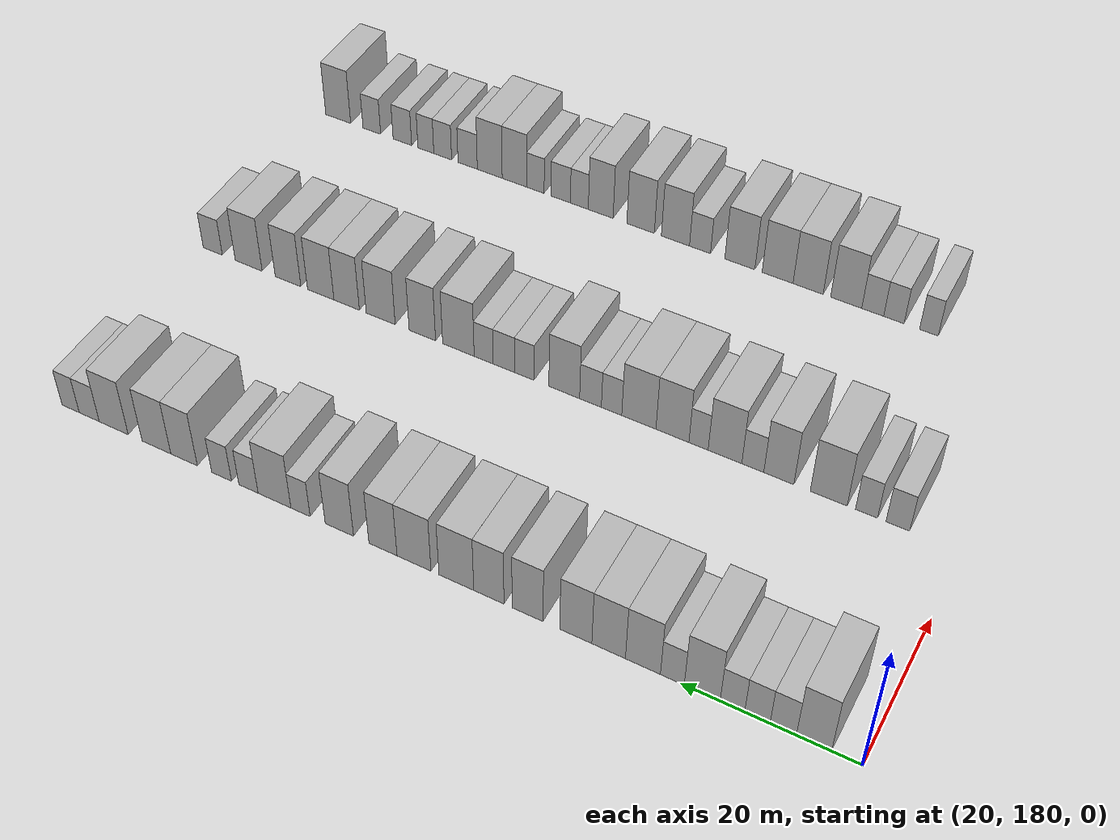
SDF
<sdf version="1.6">
 <world name="default">
  <model name="building_124">
   <static>1</static>
   <pose>25.0000 185.2528 0 0.000000 0.000000 0.000000</pose>
   <link name="link">
    <pose>0 0 4.50 0 0 0</pose>
    <collision name="collision"><geometry><box><size>10.0000 3.8066 9.0000</size></box></geometry></collision>
    <visual name="visual">
     <cast_shadows>0</cast_shadows>
     <geometry><box><size>10.0000 3.8066 9.0000</size></box></geometry>
     <material>
      <script>
       <uri>model://HANNAS_wall/materials/scripts</uri>
       <uri>model://HANNAS_wall/materials/textures</uri>
       <name>vrc/HANNAS_wall</name>
      </script>
     </material>
    </visual>
   </link>
  </model>
  <model name="building_125">
   <static>1</static>
   <pose>25.0000 188.5944 0 0.000000 0.000000 0.000000</pose>
   <link name="link">
    <pose>0 0 3.00 0 0 0</pose>
    <collision name="collision"><geometry><box><size>10.0000 2.8766 6.0000</size></box></geometry></collision>
    <visual name="visual">
     <cast_shadows>0</cast_shadows>
     <geometry><box><size>10.0000 2.8766 6.0000</size></box></geometry>
     <material>
      <script>
       <uri>model://HANNAS_wall/materials/scripts</uri>
       <uri>model://HANNAS_wall/materials/textures</uri>
       <name>vrc/HANNAS_wall</name>
      </script>
     </material>
    </visual>
   </link>
  </model>
  <model name="building_126">
   <static>1</static>
   <pose>25.0000 191.4340 0 0.000000 0.000000 0.000000</pose>
   <link name="link">
    <pose>0 0 3.00 0 0 0</pose>
    <collision name="collision"><geometry><box><size>10.0000 2.8026 6.0000</size></box></geometry></collision>
    <visual name="visual">
     <cast_shadows>0</cast_shadows>
     <geometry><box><size>10.0000 2.8026 6.0000</size></box></geometry>
     <material>
      <script>
       <uri>model://HANNAS_wall/materials/scripts</uri>
       <uri>model://HANNAS_wall/materials/textures</uri>
       <name>vrc/HANNAS_wall</name>
      </script>
     </material>
    </visual>
   </link>
  </model>
  <model name="building_127">
   <static>1</static>
   <pose>25.0000 194.2050 0 0.000000 0.000000 0.000000</pose>
   <link name="link">
    <pose>0 0 3.00 0 0 0</pose>
    <collision name="collision"><geometry><box><size>10.0000 2.7393 6.0000</size></box></geometry></collision>
    <visual name="visual">
     <cast_shadows>0</cast_shadows>
     <geometry><box><size>10.0000 2.7393 6.0000</size></box></geometry>
     <material>
      <script>
       <uri>model://HANNAS_wall/materials/scripts</uri>
       <uri>model://HANNAS_wall/materials/textures</uri>
       <name>vrc/HANNAS_wall</name>
      </script>
     </material>
    </visual>
   </link>
  </model>
  <model name="building_128">
   <static>1</static>
   <pose>25.0000 197.5988 0 0.000000 0.000000 0.000000</pose>
   <link name="link">
    <pose>0 0 4.50 0 0 0</pose>
    <collision name="collision"><geometry><box><size>10.0000 4.0482 9.0000</size></box></geometry></collision>
    <visual name="visual">
     <cast_shadows>0</cast_shadows>
     <geometry><box><size>10.0000 4.0482 9.0000</size></box></geometry>
     <material>
      <script>
       <uri>model://HANNAS_wall/materials/scripts</uri>
       <uri>model://HANNAS_wall/materials/textures</uri>
       <name>vrc/HANNAS_wall</name>
      </script>
     </material>
    </visual>
   </link>
  </model>
  <model name="building_129">
   <static>1</static>
   <pose>25.0000 200.9847 0 0.000000 0.000000 0.000000</pose>
   <link name="link">
    <pose>0 0 3.00 0 0 0</pose>
    <collision name="collision"><geometry><box><size>10.0000 2.7237 6.0000</size></box></geometry></collision>
    <visual name="visual">
     <cast_shadows>0</cast_shadows>
     <geometry><box><size>10.0000 2.7237 6.0000</size></box></geometry>
     <material>
      <script>
       <uri>model://HANNAS_wall/materials/scripts</uri>
       <uri>model://HANNAS_wall/materials/textures</uri>
       <name>vrc/HANNAS_wall</name>
      </script>
     </material>
    </visual>
   </link>
  </model>
  <model name="building_130">
   <static>1</static>
   <pose>25.0000 204.3703 0 0.000000 0.000000 0.000000</pose>
   <link name="link">
    <pose>0 0 4.50 0 0 0</pose>
    <collision name="collision"><geometry><box><size>10.0000 4.0473 9.0000</size></box></geometry></collision>
    <visual name="visual">
     <cast_shadows>0</cast_shadows>
     <geometry><box><size>10.0000 4.0473 9.0000</size></box></geometry>
     <material>
      <script>
       <uri>model://HANNAS_wall/materials/scripts</uri>
       <uri>model://HANNAS_wall/materials/textures</uri>
       <name>vrc/HANNAS_wall</name>
      </script>
     </material>
    </visual>
   </link>
  </model>
  <model name="building_131">
   <static>1</static>
   <pose>25.0000 208.3646 0 0.000000 0.000000 0.000000</pose>
   <link name="link">
    <pose>0 0 4.50 0 0 0</pose>
    <collision name="collision"><geometry><box><size>10.0000 3.9413 9.0000</size></box></geometry></collision>
    <visual name="visual">
     <cast_shadows>0</cast_shadows>
     <geometry><box><size>10.0000 3.9413 9.0000</size></box></geometry>
     <material>
      <script>
       <uri>model://HANNAS_wall/materials/scripts</uri>
       <uri>model://HANNAS_wall/materials/textures</uri>
       <name>vrc/HANNAS_wall</name>
      </script>
     </material>
    </visual>
   </link>
  </model>
  <model name="building_132">
   <static>1</static>
   <pose>25.0000 212.2471 0 0.000000 0.000000 0.000000</pose>
   <link name="link">
    <pose>0 0 4.50 0 0 0</pose>
    <collision name="collision"><geometry><box><size>10.0000 3.8238 9.0000</size></box></geometry></collision>
    <visual name="visual">
     <cast_shadows>0</cast_shadows>
     <geometry><box><size>10.0000 3.8238 9.0000</size></box></geometry>
     <material>
      <script>
       <uri>model://HANNAS_wall/materials/scripts</uri>
       <uri>model://HANNAS_wall/materials/textures</uri>
       <name>vrc/HANNAS_wall</name>
      </script>
     </material>
    </visual>
   </link>
  </model>
  <model name="building_133">
   <static>1</static>
   <pose>25.0000 218.0286 0 0.000000 0.000000 0.000000</pose>
   <link name="link">
    <pose>0 0 4.50 0 0 0</pose>
    <collision name="collision"><geometry><box><size>10.0000 3.7392 9.0000</size></box></geometry></collision>
    <visual name="visual">
     <cast_shadows>0</cast_shadows>
     <geometry><box><size>10.0000 3.7392 9.0000</size></box></geometry>
     <material>
      <script>
       <uri>model://HANNAS_wall/materials/scripts</uri>
       <uri>model://HANNAS_wall/materials/textures</uri>
       <name>vrc/HANNAS_wall</name>
      </script>
     </material>
    </visual>
   </link>
  </model>
  <model name="building_134">
   <static>1</static>
   <pose>25.0000 222.7619 0 0.000000 0.000000 0.000000</pose>
   <link name="link">
    <pose>0 0 4.50 0 0 0</pose>
    <collision name="collision"><geometry><box><size>10.0000 3.7274 9.0000</size></box></geometry></collision>
    <visual name="visual">
     <cast_shadows>0</cast_shadows>
     <geometry><box><size>10.0000 3.7274 9.0000</size></box></geometry>
     <material>
      <script>
       <uri>model://HANNAS_wall/materials/scripts</uri>
       <uri>model://HANNAS_wall/materials/textures</uri>
       <name>vrc/HANNAS_wall</name>
      </script>
     </material>
    </visual>
   </link>
  </model>
  <model name="building_135">
   <static>1</static>
   <pose>25.0000 226.8008 0 0.000000 0.000000 0.000000</pose>
   <link name="link">
    <pose>0 0 4.50 0 0 0</pose>
    <collision name="collision"><geometry><box><size>10.0000 4.3503 9.0000</size></box></geometry></collision>
    <visual name="visual">
     <cast_shadows>0</cast_shadows>
     <geometry><box><size>10.0000 4.3503 9.0000</size></box></geometry>
     <material>
      <script>
       <uri>model://HANNAS_wall/materials/scripts</uri>
       <uri>model://HANNAS_wall/materials/textures</uri>
       <name>vrc/HANNAS_wall</name>
      </script>
     </material>
    </visual>
   </link>
  </model>
  <model name="building_136">
   <static>1</static>
   <pose>25.0000 232.1371 0 0.000000 0.000000 0.000000</pose>
   <link name="link">
    <pose>0 0 4.50 0 0 0</pose>
    <collision name="collision"><geometry><box><size>10.0000 4.3225 9.0000</size></box></geometry></collision>
    <visual name="visual">
     <cast_shadows>0</cast_shadows>
     <geometry><box><size>10.0000 4.3225 9.0000</size></box></geometry>
     <material>
      <script>
       <uri>model://HANNAS_wall/materials/scripts</uri>
       <uri>model://HANNAS_wall/materials/textures</uri>
       <name>vrc/HANNAS_wall</name>
      </script>
     </material>
    </visual>
   </link>
  </model>
  <model name="building_137">
   <static>1</static>
   <pose>25.0000 236.1099 0 0.000000 0.000000 0.000000</pose>
   <link name="link">
    <pose>0 0 4.50 0 0 0</pose>
    <collision name="collision"><geometry><box><size>10.0000 3.6230 9.0000</size></box></geometry></collision>
    <visual name="visual">
     <cast_shadows>0</cast_shadows>
     <geometry><box><size>10.0000 3.6230 9.0000</size></box></geometry>
     <material>
      <script>
       <uri>model://HANNAS_wall/materials/scripts</uri>
       <uri>model://HANNAS_wall/materials/textures</uri>
       <name>vrc/HANNAS_wall</name>
      </script>
     </material>
    </visual>
   </link>
  </model>
  <model name="building_138">
   <static>1</static>
   <pose>25.0000 241.7813 0 0.000000 0.000000 0.000000</pose>
   <link name="link">
    <pose>0 0 4.50 0 0 0</pose>
    <collision name="collision"><geometry><box><size>10.0000 3.7198 9.0000</size></box></geometry></collision>
    <visual name="visual">
     <cast_shadows>0</cast_shadows>
     <geometry><box><size>10.0000 3.7198 9.0000</size></box></geometry>
     <material>
      <script>
       <uri>model://HANNAS_wall/materials/scripts</uri>
       <uri>model://HANNAS_wall/materials/textures</uri>
       <name>vrc/HANNAS_wall</name>
      </script>
     </material>
    </visual>
   </link>
  </model>
  <model name="building_139">
   <static>1</static>
   <pose>25.0000 246.9267 0 0.000000 0.000000 0.000000</pose>
   <link name="link">
    <pose>0 0 3.00 0 0 0</pose>
    <collision name="collision"><geometry><box><size>10.0000 2.5712 6.0000</size></box></geometry></collision>
    <visual name="visual">
     <cast_shadows>0</cast_shadows>
     <geometry><box><size>10.0000 2.5712 6.0000</size></box></geometry>
     <material>
      <script>
       <uri>model://HANNAS_wall/materials/scripts</uri>
       <uri>model://HANNAS_wall/materials/textures</uri>
       <name>vrc/HANNAS_wall</name>
      </script>
     </material>
    </visual>
   </link>
  </model>
  <model name="building_140">
   <static>1</static>
   <pose>25.0000 250.4297 0 0.000000 0.000000 0.000000</pose>
   <link name="link">
    <pose>0 0 4.50 0 0 0</pose>
    <collision name="collision"><geometry><box><size>10.0000 4.4347 9.0000</size></box></geometry></collision>
    <visual name="visual">
     <cast_shadows>0</cast_shadows>
     <geometry><box><size>10.0000 4.4347 9.0000</size></box></geometry>
     <material>
      <script>
       <uri>model://HANNAS_wall/materials/scripts</uri>
       <uri>model://HANNAS_wall/materials/textures</uri>
       <name>vrc/HANNAS_wall</name>
      </script>
     </material>
    </visual>
   </link>
  </model>
  <model name="building_141">
   <static>1</static>
   <pose>25.0000 253.9597 0 0.000000 0.000000 0.000000</pose>
   <link name="link">
    <pose>0 0 3.00 0 0 0</pose>
    <collision name="collision"><geometry><box><size>10.0000 2.6255 6.0000</size></box></geometry></collision>
    <visual name="visual">
     <cast_shadows>0</cast_shadows>
     <geometry><box><size>10.0000 2.6255 6.0000</size></box></geometry>
     <material>
      <script>
       <uri>model://HANNAS_wall/materials/scripts</uri>
       <uri>model://HANNAS_wall/materials/textures</uri>
       <name>vrc/HANNAS_wall</name>
      </script>
     </material>
    </visual>
   </link>
  </model>
  <model name="building_142">
   <static>1</static>
   <pose>25.0000 257.6470 0 0.000000 0.000000 0.000000</pose>
   <link name="link">
    <pose>0 0 3.00 0 0 0</pose>
    <collision name="collision"><geometry><box><size>10.0000 2.7490 6.0000</size></box></geometry></collision>
    <visual name="visual">
     <cast_shadows>0</cast_shadows>
     <geometry><box><size>10.0000 2.7490 6.0000</size></box></geometry>
     <material>
      <script>
       <uri>model://HANNAS_wall/materials/scripts</uri>
       <uri>model://HANNAS_wall/materials/textures</uri>
       <name>vrc/HANNAS_wall</name>
      </script>
     </material>
    </visual>
   </link>
  </model>
  <model name="building_143">
   <static>1</static>
   <pose>25.0000 262.8873 0 0.000000 0.000000 0.000000</pose>
   <link name="link">
    <pose>0 0 4.50 0 0 0</pose>
    <collision name="collision"><geometry><box><size>10.0000 3.7316 9.0000</size></box></geometry></collision>
    <visual name="visual">
     <cast_shadows>0</cast_shadows>
     <geometry><box><size>10.0000 3.7316 9.0000</size></box></geometry>
     <material>
      <script>
       <uri>model://HANNAS_wall/materials/scripts</uri>
       <uri>model://HANNAS_wall/materials/textures</uri>
       <name>vrc/HANNAS_wall</name>
      </script>
     </material>
    </visual>
   </link>
  </model>
  <model name="building_144">
   <static>1</static>
   <pose>25.0000 266.8000 0 0.000000 0.000000 0.000000</pose>
   <link name="link">
    <pose>0 0 4.50 0 0 0</pose>
    <collision name="collision"><geometry><box><size>10.0000 4.0939 9.0000</size></box></geometry></collision>
    <visual name="visual">
     <cast_shadows>0</cast_shadows>
     <geometry><box><size>10.0000 4.0939 9.0000</size></box></geometry>
     <material>
      <script>
       <uri>model://HANNAS_wall/materials/scripts</uri>
       <uri>model://HANNAS_wall/materials/textures</uri>
       <name>vrc/HANNAS_wall</name>
      </script>
     </material>
    </visual>
   </link>
  </model>
  <model name="building_145">
   <static>1</static>
   <pose>25.0000 272.9454 0 0.000000 0.000000 0.000000</pose>
   <link name="link">
    <pose>0 0 4.50 0 0 0</pose>
    <collision name="collision"><geometry><box><size>10.0000 4.1967 9.0000</size></box></geometry></collision>
    <visual name="visual">
     <cast_shadows>0</cast_shadows>
     <geometry><box><size>10.0000 4.1967 9.0000</size></box></geometry>
     <material>
      <script>
       <uri>model://HANNAS_wall/materials/scripts</uri>
       <uri>model://HANNAS_wall/materials/textures</uri>
       <name>vrc/HANNAS_wall</name>
      </script>
     </material>
    </visual>
   </link>
  </model>
  <model name="building_146">
   <static>1</static>
   <pose>25.0000 276.5091 0 0.000000 0.000000 0.000000</pose>
   <link name="link">
    <pose>0 0 3.00 0 0 0</pose>
    <collision name="collision"><geometry><box><size>10.0000 2.9308 6.0000</size></box></geometry></collision>
    <visual name="visual">
     <cast_shadows>0</cast_shadows>
     <geometry><box><size>10.0000 2.9308 6.0000</size></box></geometry>
     <material>
      <script>
       <uri>model://HANNAS_wall/materials/scripts</uri>
       <uri>model://HANNAS_wall/materials/textures</uri>
       <name>vrc/HANNAS_wall</name>
      </script>
     </material>
    </visual>
   </link>
  </model>
  <model name="building_147">
   <static>1</static>
   <pose>25.0000 279.2456 0 0.000000 0.000000 0.000000</pose>
   <link name="link">
    <pose>0 0 3.00 0 0 0</pose>
    <collision name="collision"><geometry><box><size>10.0000 2.5422 6.0000</size></box></geometry></collision>
    <visual name="visual">
     <cast_shadows>0</cast_shadows>
     <geometry><box><size>10.0000 2.5422 6.0000</size></box></geometry>
     <material>
      <script>
       <uri>model://HANNAS_wall/materials/scripts</uri>
       <uri>model://HANNAS_wall/materials/textures</uri>
       <name>vrc/HANNAS_wall</name>
      </script>
     </material>
    </visual>
   </link>
  </model>
  <model name="building_253">
   <static>1</static>
   <pose>55.0000 187.4787 0 0.000000 0.000000 0.000000</pose>
   <link name="link">
    <pose>0 0 3.00 0 0 0</pose>
    <collision name="collision"><geometry><box><size>10.0000 2.7904 6.0000</size></box></geometry></collision>
    <visual name="visual">
     <cast_shadows>0</cast_shadows>
     <geometry><box><size>10.0000 2.7904 6.0000</size></box></geometry>
     <material>
      <script>
       <uri>model://HANNAS_wall/materials/scripts</uri>
       <uri>model://HANNAS_wall/materials/textures</uri>
       <name>vrc/HANNAS_wall</name>
      </script>
     </material>
    </visual>
   </link>
  </model>
  <model name="building_254">
   <static>1</static>
   <pose>55.0000 191.1822 0 0.000000 0.000000 0.000000</pose>
   <link name="link">
    <pose>0 0 3.00 0 0 0</pose>
    <collision name="collision"><geometry><box><size>10.0000 2.6165 6.0000</size></box></geometry></collision>
    <visual name="visual">
     <cast_shadows>0</cast_shadows>
     <geometry><box><size>10.0000 2.6165 6.0000</size></box></geometry>
     <material>
      <script>
       <uri>model://HANNAS_wall/materials/scripts</uri>
       <uri>model://HANNAS_wall/materials/textures</uri>
       <name>vrc/HANNAS_wall</name>
      </script>
     </material>
    </visual>
   </link>
  </model>
  <model name="building_255">
   <static>1</static>
   <pose>55.0000 195.7146 0 0.000000 0.000000 0.000000</pose>
   <link name="link">
    <pose>0 0 4.50 0 0 0</pose>
    <collision name="collision"><geometry><box><size>10.0000 4.4484 9.0000</size></box></geometry></collision>
    <visual name="visual">
     <cast_shadows>0</cast_shadows>
     <geometry><box><size>10.0000 4.4484 9.0000</size></box></geometry>
     <material>
      <script>
       <uri>model://HANNAS_wall/materials/scripts</uri>
       <uri>model://HANNAS_wall/materials/textures</uri>
       <name>vrc/HANNAS_wall</name>
      </script>
     </material>
    </visual>
   </link>
  </model>
  <model name="building_256">
   <static>1</static>
   <pose>55.0000 201.7899 0 0.000000 0.000000 0.000000</pose>
   <link name="link">
    <pose>0 0 4.50 0 0 0</pose>
    <collision name="collision"><geometry><box><size>10.0000 3.7021 9.0000</size></box></geometry></collision>
    <visual name="visual">
     <cast_shadows>0</cast_shadows>
     <geometry><box><size>10.0000 3.7021 9.0000</size></box></geometry>
     <material>
      <script>
       <uri>model://HANNAS_wall/materials/scripts</uri>
       <uri>model://HANNAS_wall/materials/textures</uri>
       <name>vrc/HANNAS_wall</name>
      </script>
     </material>
    </visual>
   </link>
  </model>
  <model name="building_257">
   <static>1</static>
   <pose>55.0000 205.0075 0 0.000000 0.000000 0.000000</pose>
   <link name="link">
    <pose>0 0 3.00 0 0 0</pose>
    <collision name="collision"><geometry><box><size>10.0000 2.7332 6.0000</size></box></geometry></collision>
    <visual name="visual">
     <cast_shadows>0</cast_shadows>
     <geometry><box><size>10.0000 2.7332 6.0000</size></box></geometry>
     <material>
      <script>
       <uri>model://HANNAS_wall/materials/scripts</uri>
       <uri>model://HANNAS_wall/materials/textures</uri>
       <name>vrc/HANNAS_wall</name>
      </script>
     </material>
    </visual>
   </link>
  </model>
  <model name="building_258">
   <static>1</static>
   <pose>55.0000 208.4894 0 0.000000 0.000000 0.000000</pose>
   <link name="link">
    <pose>0 0 4.50 0 0 0</pose>
    <collision name="collision"><geometry><box><size>10.0000 4.2304 9.0000</size></box></geometry></collision>
    <visual name="visual">
     <cast_shadows>0</cast_shadows>
     <geometry><box><size>10.0000 4.2304 9.0000</size></box></geometry>
     <material>
      <script>
       <uri>model://HANNAS_wall/materials/scripts</uri>
       <uri>model://HANNAS_wall/materials/textures</uri>
       <name>vrc/HANNAS_wall</name>
      </script>
     </material>
    </visual>
   </link>
  </model>
  <model name="building_259">
   <static>1</static>
   <pose>55.0000 211.8227 0 0.000000 0.000000 0.000000</pose>
   <link name="link">
    <pose>0 0 3.00 0 0 0</pose>
    <collision name="collision"><geometry><box><size>10.0000 2.4363 6.0000</size></box></geometry></collision>
    <visual name="visual">
     <cast_shadows>0</cast_shadows>
     <geometry><box><size>10.0000 2.4363 6.0000</size></box></geometry>
     <material>
      <script>
       <uri>model://HANNAS_wall/materials/scripts</uri>
       <uri>model://HANNAS_wall/materials/textures</uri>
       <name>vrc/HANNAS_wall</name>
      </script>
     </material>
    </visual>
   </link>
  </model>
  <model name="building_260">
   <static>1</static>
   <pose>55.0000 215.1564 0 0.000000 0.000000 0.000000</pose>
   <link name="link">
    <pose>0 0 4.50 0 0 0</pose>
    <collision name="collision"><geometry><box><size>10.0000 4.2311 9.0000</size></box></geometry></collision>
    <visual name="visual">
     <cast_shadows>0</cast_shadows>
     <geometry><box><size>10.0000 4.2311 9.0000</size></box></geometry>
     <material>
      <script>
       <uri>model://HANNAS_wall/materials/scripts</uri>
       <uri>model://HANNAS_wall/materials/textures</uri>
       <name>vrc/HANNAS_wall</name>
      </script>
     </material>
    </visual>
   </link>
  </model>
  <model name="building_261">
   <static>1</static>
   <pose>55.0000 219.4976 0 0.000000 0.000000 0.000000</pose>
   <link name="link">
    <pose>0 0 4.50 0 0 0</pose>
    <collision name="collision"><geometry><box><size>10.0000 4.4512 9.0000</size></box></geometry></collision>
    <visual name="visual">
     <cast_shadows>0</cast_shadows>
     <geometry><box><size>10.0000 4.4512 9.0000</size></box></geometry>
     <material>
      <script>
       <uri>model://HANNAS_wall/materials/scripts</uri>
       <uri>model://HANNAS_wall/materials/textures</uri>
       <name>vrc/HANNAS_wall</name>
      </script>
     </material>
    </visual>
   </link>
  </model>
  <model name="building_262">
   <static>1</static>
   <pose>55.0000 223.0651 0 0.000000 0.000000 0.000000</pose>
   <link name="link">
    <pose>0 0 3.00 0 0 0</pose>
    <collision name="collision"><geometry><box><size>10.0000 2.6837 6.0000</size></box></geometry></collision>
    <visual name="visual">
     <cast_shadows>0</cast_shadows>
     <geometry><box><size>10.0000 2.6837 6.0000</size></box></geometry>
     <material>
      <script>
       <uri>model://HANNAS_wall/materials/scripts</uri>
       <uri>model://HANNAS_wall/materials/textures</uri>
       <name>vrc/HANNAS_wall</name>
      </script>
     </material>
    </visual>
   </link>
  </model>
  <model name="building_263">
   <static>1</static>
   <pose>55.0000 225.8479 0 0.000000 0.000000 0.000000</pose>
   <link name="link">
    <pose>0 0 3.00 0 0 0</pose>
    <collision name="collision"><geometry><box><size>10.0000 2.8821 6.0000</size></box></geometry></collision>
    <visual name="visual">
     <cast_shadows>0</cast_shadows>
     <geometry><box><size>10.0000 2.8821 6.0000</size></box></geometry>
     <material>
      <script>
       <uri>model://HANNAS_wall/materials/scripts</uri>
       <uri>model://HANNAS_wall/materials/textures</uri>
       <name>vrc/HANNAS_wall</name>
      </script>
     </material>
    </visual>
   </link>
  </model>
  <model name="building_264">
   <static>1</static>
   <pose>55.0000 229.3507 0 0.000000 0.000000 0.000000</pose>
   <link name="link">
    <pose>0 0 4.50 0 0 0</pose>
    <collision name="collision"><geometry><box><size>10.0000 4.1235 9.0000</size></box></geometry></collision>
    <visual name="visual">
     <cast_shadows>0</cast_shadows>
     <geometry><box><size>10.0000 4.1235 9.0000</size></box></geometry>
     <material>
      <script>
       <uri>model://HANNAS_wall/materials/scripts</uri>
       <uri>model://HANNAS_wall/materials/textures</uri>
       <name>vrc/HANNAS_wall</name>
      </script>
     </material>
    </visual>
   </link>
  </model>
  <model name="building_265">
   <static>1</static>
   <pose>55.0000 234.7436 0 0.000000 0.000000 0.000000</pose>
   <link name="link">
    <pose>0 0 3.00 0 0 0</pose>
    <collision name="collision"><geometry><box><size>10.0000 2.6623 6.0000</size></box></geometry></collision>
    <visual name="visual">
     <cast_shadows>0</cast_shadows>
     <geometry><box><size>10.0000 2.6623 6.0000</size></box></geometry>
     <material>
      <script>
       <uri>model://HANNAS_wall/materials/scripts</uri>
       <uri>model://HANNAS_wall/materials/textures</uri>
       <name>vrc/HANNAS_wall</name>
      </script>
     </material>
    </visual>
   </link>
  </model>
  <model name="building_266">
   <static>1</static>
   <pose>55.0000 237.5414 0 0.000000 0.000000 0.000000</pose>
   <link name="link">
    <pose>0 0 3.00 0 0 0</pose>
    <collision name="collision"><geometry><box><size>10.0000 2.9333 6.0000</size></box></geometry></collision>
    <visual name="visual">
     <cast_shadows>0</cast_shadows>
     <geometry><box><size>10.0000 2.9333 6.0000</size></box></geometry>
     <material>
      <script>
       <uri>model://HANNAS_wall/materials/scripts</uri>
       <uri>model://HANNAS_wall/materials/textures</uri>
       <name>vrc/HANNAS_wall</name>
      </script>
     </material>
    </visual>
   </link>
  </model>
  <model name="building_267">
   <static>1</static>
   <pose>55.0000 240.3283 0 0.000000 0.000000 0.000000</pose>
   <link name="link">
    <pose>0 0 3.00 0 0 0</pose>
    <collision name="collision"><geometry><box><size>10.0000 2.6404 6.0000</size></box></geometry></collision>
    <visual name="visual">
     <cast_shadows>0</cast_shadows>
     <geometry><box><size>10.0000 2.6404 6.0000</size></box></geometry>
     <material>
      <script>
       <uri>model://HANNAS_wall/materials/scripts</uri>
       <uri>model://HANNAS_wall/materials/textures</uri>
       <name>vrc/HANNAS_wall</name>
      </script>
     </material>
    </visual>
   </link>
  </model>
  <model name="building_268">
   <static>1</static>
   <pose>55.0000 243.8575 0 0.000000 0.000000 0.000000</pose>
   <link name="link">
    <pose>0 0 4.50 0 0 0</pose>
    <collision name="collision"><geometry><box><size>10.0000 4.4179 9.0000</size></box></geometry></collision>
    <visual name="visual">
     <cast_shadows>0</cast_shadows>
     <geometry><box><size>10.0000 4.4179 9.0000</size></box></geometry>
     <material>
      <script>
       <uri>model://HANNAS_wall/materials/scripts</uri>
       <uri>model://HANNAS_wall/materials/textures</uri>
       <name>vrc/HANNAS_wall</name>
      </script>
     </material>
    </visual>
   </link>
  </model>
  <model name="building_269">
   <static>1</static>
   <pose>55.0000 248.9465 0 0.000000 0.000000 0.000000</pose>
   <link name="link">
    <pose>0 0 4.50 0 0 0</pose>
    <collision name="collision"><geometry><box><size>10.0000 3.7601 9.0000</size></box></geometry></collision>
    <visual name="visual">
     <cast_shadows>0</cast_shadows>
     <geometry><box><size>10.0000 3.7601 9.0000</size></box></geometry>
     <material>
      <script>
       <uri>model://HANNAS_wall/materials/scripts</uri>
       <uri>model://HANNAS_wall/materials/textures</uri>
       <name>vrc/HANNAS_wall</name>
      </script>
     </material>
    </visual>
   </link>
  </model>
  <model name="building_270">
   <static>1</static>
   <pose>55.0000 254.9238 0 0.000000 0.000000 0.000000</pose>
   <link name="link">
    <pose>0 0 4.50 0 0 0</pose>
    <collision name="collision"><geometry><box><size>10.0000 4.1944 9.0000</size></box></geometry></collision>
    <visual name="visual">
     <cast_shadows>0</cast_shadows>
     <geometry><box><size>10.0000 4.1944 9.0000</size></box></geometry>
     <material>
      <script>
       <uri>model://HANNAS_wall/materials/scripts</uri>
       <uri>model://HANNAS_wall/materials/textures</uri>
       <name>vrc/HANNAS_wall</name>
      </script>
     </material>
    </visual>
   </link>
  </model>
  <model name="building_271">
   <static>1</static>
   <pose>55.0000 259.8916 0 0.000000 0.000000 0.000000</pose>
   <link name="link">
    <pose>0 0 4.50 0 0 0</pose>
    <collision name="collision"><geometry><box><size>10.0000 3.7413 9.0000</size></box></geometry></collision>
    <visual name="visual">
     <cast_shadows>0</cast_shadows>
     <geometry><box><size>10.0000 3.7413 9.0000</size></box></geometry>
     <material>
      <script>
       <uri>model://HANNAS_wall/materials/scripts</uri>
       <uri>model://HANNAS_wall/materials/textures</uri>
       <name>vrc/HANNAS_wall</name>
      </script>
     </material>
    </visual>
   </link>
  </model>
  <model name="building_272">
   <static>1</static>
   <pose>55.0000 263.7236 0 0.000000 0.000000 0.000000</pose>
   <link name="link">
    <pose>0 0 4.50 0 0 0</pose>
    <collision name="collision"><geometry><box><size>10.0000 3.9228 9.0000</size></box></geometry></collision>
    <visual name="visual">
     <cast_shadows>0</cast_shadows>
     <geometry><box><size>10.0000 3.9228 9.0000</size></box></geometry>
     <material>
      <script>
       <uri>model://HANNAS_wall/materials/scripts</uri>
       <uri>model://HANNAS_wall/materials/textures</uri>
       <name>vrc/HANNAS_wall</name>
      </script>
     </material>
    </visual>
   </link>
  </model>
  <model name="building_273">
   <static>1</static>
   <pose>55.0000 268.6148 0 0.000000 0.000000 0.000000</pose>
   <link name="link">
    <pose>0 0 4.50 0 0 0</pose>
    <collision name="collision"><geometry><box><size>10.0000 3.8597 9.0000</size></box></geometry></collision>
    <visual name="visual">
     <cast_shadows>0</cast_shadows>
     <geometry><box><size>10.0000 3.8597 9.0000</size></box></geometry>
     <material>
      <script>
       <uri>model://HANNAS_wall/materials/scripts</uri>
       <uri>model://HANNAS_wall/materials/textures</uri>
       <name>vrc/HANNAS_wall</name>
      </script>
     </material>
    </visual>
   </link>
  </model>
  <model name="building_274">
   <static>1</static>
   <pose>55.0000 274.6066 0 0.000000 0.000000 0.000000</pose>
   <link name="link">
    <pose>0 0 4.50 0 0 0</pose>
    <collision name="collision"><geometry><box><size>10.0000 4.1239 9.0000</size></box></geometry></collision>
    <visual name="visual">
     <cast_shadows>0</cast_shadows>
     <geometry><box><size>10.0000 4.1239 9.0000</size></box></geometry>
     <material>
      <script>
       <uri>model://HANNAS_wall/materials/scripts</uri>
       <uri>model://HANNAS_wall/materials/textures</uri>
       <name>vrc/HANNAS_wall</name>
      </script>
     </material>
    </visual>
   </link>
  </model>
  <model name="building_275">
   <static>1</static>
   <pose>55.0000 280.1537 0 0.000000 0.000000 0.000000</pose>
   <link name="link">
    <pose>0 0 3.00 0 0 0</pose>
    <collision name="collision"><geometry><box><size>10.0000 2.9703 6.0000</size></box></geometry></collision>
    <visual name="visual">
     <cast_shadows>0</cast_shadows>
     <geometry><box><size>10.0000 2.9703 6.0000</size></box></geometry>
     <material>
      <script>
       <uri>model://HANNAS_wall/materials/scripts</uri>
       <uri>model://HANNAS_wall/materials/textures</uri>
       <name>vrc/HANNAS_wall</name>
      </script>
     </material>
    </visual>
   </link>
  </model>
  <model name="building_394">
   <static>1</static>
   <pose>85.0000 194.6223 0 0.000000 0.000000 0.000000</pose>
   <link name="link">
    <pose>0 0 3.00 0 0 0</pose>
    <collision name="collision"><geometry><box><size>10.0000 2.4078 6.0000</size></box></geometry></collision>
    <visual name="visual">
     <cast_shadows>0</cast_shadows>
     <geometry><box><size>10.0000 2.4078 6.0000</size></box></geometry>
     <material>
      <script>
       <uri>model://HANNAS_wall/materials/scripts</uri>
       <uri>model://HANNAS_wall/materials/textures</uri>
       <name>vrc/HANNAS_wall</name>
      </script>
     </material>
    </visual>
   </link>
  </model>
  <model name="building_395">
   <static>1</static>
   <pose>85.0000 199.1557 0 0.000000 0.000000 0.000000</pose>
   <link name="link">
    <pose>0 0 3.00 0 0 0</pose>
    <collision name="collision"><geometry><box><size>10.0000 2.6590 6.0000</size></box></geometry></collision>
    <visual name="visual">
     <cast_shadows>0</cast_shadows>
     <geometry><box><size>10.0000 2.6590 6.0000</size></box></geometry>
     <material>
      <script>
       <uri>model://HANNAS_wall/materials/scripts</uri>
       <uri>model://HANNAS_wall/materials/textures</uri>
       <name>vrc/HANNAS_wall</name>
      </script>
     </material>
    </visual>
   </link>
  </model>
  <model name="building_396">
   <static>1</static>
   <pose>85.0000 201.9260 0 0.000000 0.000000 0.000000</pose>
   <link name="link">
    <pose>0 0 3.00 0 0 0</pose>
    <collision name="collision"><geometry><box><size>10.0000 2.8815 6.0000</size></box></geometry></collision>
    <visual name="visual">
     <cast_shadows>0</cast_shadows>
     <geometry><box><size>10.0000 2.8815 6.0000</size></box></geometry>
     <material>
      <script>
       <uri>model://HANNAS_wall/materials/scripts</uri>
       <uri>model://HANNAS_wall/materials/textures</uri>
       <name>vrc/HANNAS_wall</name>
      </script>
     </material>
    </visual>
   </link>
  </model>
  <model name="building_397">
   <static>1</static>
   <pose>85.0000 205.4390 0 0.000000 0.000000 0.000000</pose>
   <link name="link">
    <pose>0 0 4.50 0 0 0</pose>
    <collision name="collision"><geometry><box><size>10.0000 4.1445 9.0000</size></box></geometry></collision>
    <visual name="visual">
     <cast_shadows>0</cast_shadows>
     <geometry><box><size>10.0000 4.1445 9.0000</size></box></geometry>
     <material>
      <script>
       <uri>model://HANNAS_wall/materials/scripts</uri>
       <uri>model://HANNAS_wall/materials/textures</uri>
       <name>vrc/HANNAS_wall</name>
      </script>
     </material>
    </visual>
   </link>
  </model>
  <model name="building_398">
   <static>1</static>
   <pose>85.0000 210.5444 0 0.000000 0.000000 0.000000</pose>
   <link name="link">
    <pose>0 0 4.50 0 0 0</pose>
    <collision name="collision"><geometry><box><size>10.0000 4.0663 9.0000</size></box></geometry></collision>
    <visual name="visual">
     <cast_shadows>0</cast_shadows>
     <geometry><box><size>10.0000 4.0663 9.0000</size></box></geometry>
     <material>
      <script>
       <uri>model://HANNAS_wall/materials/scripts</uri>
       <uri>model://HANNAS_wall/materials/textures</uri>
       <name>vrc/HANNAS_wall</name>
      </script>
     </material>
    </visual>
   </link>
  </model>
  <model name="building_399">
   <static>1</static>
   <pose>85.0000 214.6871 0 0.000000 0.000000 0.000000</pose>
   <link name="link">
    <pose>0 0 4.50 0 0 0</pose>
    <collision name="collision"><geometry><box><size>10.0000 4.2192 9.0000</size></box></geometry></collision>
    <visual name="visual">
     <cast_shadows>0</cast_shadows>
     <geometry><box><size>10.0000 4.2192 9.0000</size></box></geometry>
     <material>
      <script>
       <uri>model://HANNAS_wall/materials/scripts</uri>
       <uri>model://HANNAS_wall/materials/textures</uri>
       <name>vrc/HANNAS_wall</name>
      </script>
     </material>
    </visual>
   </link>
  </model>
  <model name="building_400">
   <static>1</static>
   <pose>85.0000 219.8790 0 0.000000 0.000000 0.000000</pose>
   <link name="link">
    <pose>0 0 4.50 0 0 0</pose>
    <collision name="collision"><geometry><box><size>10.0000 4.1646 9.0000</size></box></geometry></collision>
    <visual name="visual">
     <cast_shadows>0</cast_shadows>
     <geometry><box><size>10.0000 4.1646 9.0000</size></box></geometry>
     <material>
      <script>
       <uri>model://HANNAS_wall/materials/scripts</uri>
       <uri>model://HANNAS_wall/materials/textures</uri>
       <name>vrc/HANNAS_wall</name>
      </script>
     </material>
    </visual>
   </link>
  </model>
  <model name="building_401">
   <static>1</static>
   <pose>85.0000 225.4375 0 0.000000 0.000000 0.000000</pose>
   <link name="link">
    <pose>0 0 3.00 0 0 0</pose>
    <collision name="collision"><geometry><box><size>10.0000 2.9523 6.0000</size></box></geometry></collision>
    <visual name="visual">
     <cast_shadows>0</cast_shadows>
     <geometry><box><size>10.0000 2.9523 6.0000</size></box></geometry>
     <material>
      <script>
       <uri>model://HANNAS_wall/materials/scripts</uri>
       <uri>model://HANNAS_wall/materials/textures</uri>
       <name>vrc/HANNAS_wall</name>
      </script>
     </material>
    </visual>
   </link>
  </model>
  <model name="building_402">
   <static>1</static>
   <pose>85.0000 228.9165 0 0.000000 0.000000 0.000000</pose>
   <link name="link">
    <pose>0 0 4.50 0 0 0</pose>
    <collision name="collision"><geometry><box><size>10.0000 4.0058 9.0000</size></box></geometry></collision>
    <visual name="visual">
     <cast_shadows>0</cast_shadows>
     <geometry><box><size>10.0000 4.0058 9.0000</size></box></geometry>
     <material>
      <script>
       <uri>model://HANNAS_wall/materials/scripts</uri>
       <uri>model://HANNAS_wall/materials/textures</uri>
       <name>vrc/HANNAS_wall</name>
      </script>
     </material>
    </visual>
   </link>
  </model>
  <model name="building_403">
   <static>1</static>
   <pose>85.0000 233.9007 0 0.000000 0.000000 0.000000</pose>
   <link name="link">
    <pose>0 0 4.50 0 0 0</pose>
    <collision name="collision"><geometry><box><size>10.0000 3.9625 9.0000</size></box></geometry></collision>
    <visual name="visual">
     <cast_shadows>0</cast_shadows>
     <geometry><box><size>10.0000 3.9625 9.0000</size></box></geometry>
     <material>
      <script>
       <uri>model://HANNAS_wall/materials/scripts</uri>
       <uri>model://HANNAS_wall/materials/textures</uri>
       <name>vrc/HANNAS_wall</name>
      </script>
     </material>
    </visual>
   </link>
  </model>
  <model name="building_404">
   <static>1</static>
   <pose>85.0000 239.7016 0 0.000000 0.000000 0.000000</pose>
   <link name="link">
    <pose>0 0 4.50 0 0 0</pose>
    <collision name="collision"><geometry><box><size>10.0000 3.6394 9.0000</size></box></geometry></collision>
    <visual name="visual">
     <cast_shadows>0</cast_shadows>
     <geometry><box><size>10.0000 3.6394 9.0000</size></box></geometry>
     <material>
      <script>
       <uri>model://HANNAS_wall/materials/scripts</uri>
       <uri>model://HANNAS_wall/materials/textures</uri>
       <name>vrc/HANNAS_wall</name>
      </script>
     </material>
    </visual>
   </link>
  </model>
  <model name="building_405">
   <static>1</static>
   <pose>85.0000 242.8490 0 0.000000 0.000000 0.000000</pose>
   <link name="link">
    <pose>0 0 3.00 0 0 0</pose>
    <collision name="collision"><geometry><box><size>10.0000 2.6554 6.0000</size></box></geometry></collision>
    <visual name="visual">
     <cast_shadows>0</cast_shadows>
     <geometry><box><size>10.0000 2.6554 6.0000</size></box></geometry>
     <material>
      <script>
       <uri>model://HANNAS_wall/materials/scripts</uri>
       <uri>model://HANNAS_wall/materials/textures</uri>
       <name>vrc/HANNAS_wall</name>
      </script>
     </material>
    </visual>
   </link>
  </model>
  <model name="building_406">
   <static>1</static>
   <pose>85.0000 245.6295 0 0.000000 0.000000 0.000000</pose>
   <link name="link">
    <pose>0 0 3.00 0 0 0</pose>
    <collision name="collision"><geometry><box><size>10.0000 2.9056 6.0000</size></box></geometry></collision>
    <visual name="visual">
     <cast_shadows>0</cast_shadows>
     <geometry><box><size>10.0000 2.9056 6.0000</size></box></geometry>
     <material>
      <script>
       <uri>model://HANNAS_wall/materials/scripts</uri>
       <uri>model://HANNAS_wall/materials/textures</uri>
       <name>vrc/HANNAS_wall</name>
      </script>
     </material>
    </visual>
   </link>
  </model>
  <model name="building_407">
   <static>1</static>
   <pose>85.0000 249.3957 0 0.000000 0.000000 0.000000</pose>
   <link name="link">
    <pose>0 0 3.00 0 0 0</pose>
    <collision name="collision"><geometry><box><size>10.0000 2.6269 6.0000</size></box></geometry></collision>
    <visual name="visual">
     <cast_shadows>0</cast_shadows>
     <geometry><box><size>10.0000 2.6269 6.0000</size></box></geometry>
     <material>
      <script>
       <uri>model://HANNAS_wall/materials/scripts</uri>
       <uri>model://HANNAS_wall/materials/textures</uri>
       <name>vrc/HANNAS_wall</name>
      </script>
     </material>
    </visual>
   </link>
  </model>
  <model name="building_408">
   <static>1</static>
   <pose>85.0000 252.5652 0 0.000000 0.000000 0.000000</pose>
   <link name="link">
    <pose>0 0 4.50 0 0 0</pose>
    <collision name="collision"><geometry><box><size>10.0000 3.7120 9.0000</size></box></geometry></collision>
    <visual name="visual">
     <cast_shadows>0</cast_shadows>
     <geometry><box><size>10.0000 3.7120 9.0000</size></box></geometry>
     <material>
      <script>
       <uri>model://HANNAS_wall/materials/scripts</uri>
       <uri>model://HANNAS_wall/materials/textures</uri>
       <name>vrc/HANNAS_wall</name>
      </script>
     </material>
    </visual>
   </link>
  </model>
  <model name="building_409">
   <static>1</static>
   <pose>85.0000 256.3304 0 0.000000 0.000000 0.000000</pose>
   <link name="link">
    <pose>0 0 4.50 0 0 0</pose>
    <collision name="collision"><geometry><box><size>10.0000 3.8184 9.0000</size></box></geometry></collision>
    <visual name="visual">
     <cast_shadows>0</cast_shadows>
     <geometry><box><size>10.0000 3.8184 9.0000</size></box></geometry>
     <material>
      <script>
       <uri>model://HANNAS_wall/materials/scripts</uri>
       <uri>model://HANNAS_wall/materials/textures</uri>
       <name>vrc/HANNAS_wall</name>
      </script>
     </material>
    </visual>
   </link>
  </model>
  <model name="building_410">
   <static>1</static>
   <pose>85.0000 259.7307 0 0.000000 0.000000 0.000000</pose>
   <link name="link">
    <pose>0 0 3.00 0 0 0</pose>
    <collision name="collision"><geometry><box><size>10.0000 2.9823 6.0000</size></box></geometry></collision>
    <visual name="visual">
     <cast_shadows>0</cast_shadows>
     <geometry><box><size>10.0000 2.9823 6.0000</size></box></geometry>
     <material>
      <script>
       <uri>model://HANNAS_wall/materials/scripts</uri>
       <uri>model://HANNAS_wall/materials/textures</uri>
       <name>vrc/HANNAS_wall</name>
      </script>
     </material>
    </visual>
   </link>
  </model>
  <model name="building_411">
   <static>1</static>
   <pose>85.0000 263.6145 0 0.000000 0.000000 0.000000</pose>
   <link name="link">
    <pose>0 0 3.00 0 0 0</pose>
    <collision name="collision"><geometry><box><size>10.0000 2.7852 6.0000</size></box></geometry></collision>
    <visual name="visual">
     <cast_shadows>0</cast_shadows>
     <geometry><box><size>10.0000 2.7852 6.0000</size></box></geometry>
     <material>
      <script>
       <uri>model://HANNAS_wall/materials/scripts</uri>
       <uri>model://HANNAS_wall/materials/textures</uri>
       <name>vrc/HANNAS_wall</name>
      </script>
     </material>
    </visual>
   </link>
  </model>
  <model name="building_412">
   <static>1</static>
   <pose>85.0000 266.2546 0 0.000000 0.000000 0.000000</pose>
   <link name="link">
    <pose>0 0 3.00 0 0 0</pose>
    <collision name="collision"><geometry><box><size>10.0000 2.4952 6.0000</size></box></geometry></collision>
    <visual name="visual">
     <cast_shadows>0</cast_shadows>
     <geometry><box><size>10.0000 2.4952 6.0000</size></box></geometry>
     <material>
      <script>
       <uri>model://HANNAS_wall/materials/scripts</uri>
       <uri>model://HANNAS_wall/materials/textures</uri>
       <name>vrc/HANNAS_wall</name>
      </script>
     </material>
    </visual>
   </link>
  </model>
  <model name="building_413">
   <static>1</static>
   <pose>85.0000 269.9777 0 0.000000 0.000000 0.000000</pose>
   <link name="link">
    <pose>0 0 3.00 0 0 0</pose>
    <collision name="collision"><geometry><box><size>10.0000 2.9510 6.0000</size></box></geometry></collision>
    <visual name="visual">
     <cast_shadows>0</cast_shadows>
     <geometry><box><size>10.0000 2.9510 6.0000</size></box></geometry>
     <material>
      <script>
       <uri>model://HANNAS_wall/materials/scripts</uri>
       <uri>model://HANNAS_wall/materials/textures</uri>
       <name>vrc/HANNAS_wall</name>
      </script>
     </material>
    </visual>
   </link>
  </model>
  <model name="building_414">
   <static>1</static>
   <pose>85.0000 274.8743 0 0.000000 0.000000 0.000000</pose>
   <link name="link">
    <pose>0 0 3.00 0 0 0</pose>
    <collision name="collision"><geometry><box><size>10.0000 2.8423 6.0000</size></box></geometry></collision>
    <visual name="visual">
     <cast_shadows>0</cast_shadows>
     <geometry><box><size>10.0000 2.8423 6.0000</size></box></geometry>
     <material>
      <script>
       <uri>model://HANNAS_wall/materials/scripts</uri>
       <uri>model://HANNAS_wall/materials/textures</uri>
       <name>vrc/HANNAS_wall</name>
      </script>
     </material>
    </visual>
   </link>
  </model>
  <model name="building_415">
   <static>1</static>
   <pose>85.0000 280.3286 0 0.000000 0.000000 0.000000</pose>
   <link name="link">
    <pose>0 0 4.50 0 0 0</pose>
    <collision name="collision"><geometry><box><size>10.0000 4.0663 9.0000</size></box></geometry></collision>
    <visual name="visual">
     <cast_shadows>0</cast_shadows>
     <geometry><box><size>10.0000 4.0663 9.0000</size></box></geometry>
     <material>
      <script>
       <uri>model://HANNAS_wall/materials/scripts</uri>
       <uri>model://HANNAS_wall/materials/textures</uri>
       <name>vrc/HANNAS_wall</name>
      </script>
     </material>
    </visual>
   </link>
  </model>
 </world>
</sdf>
